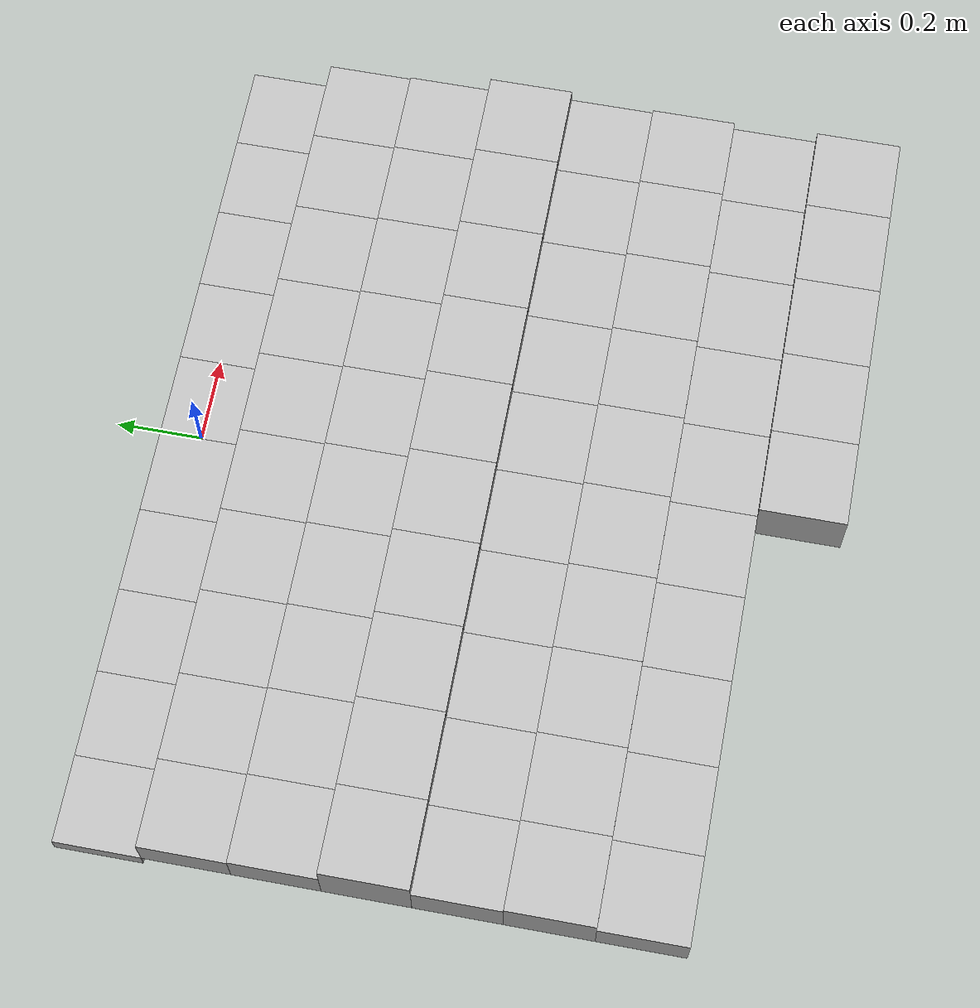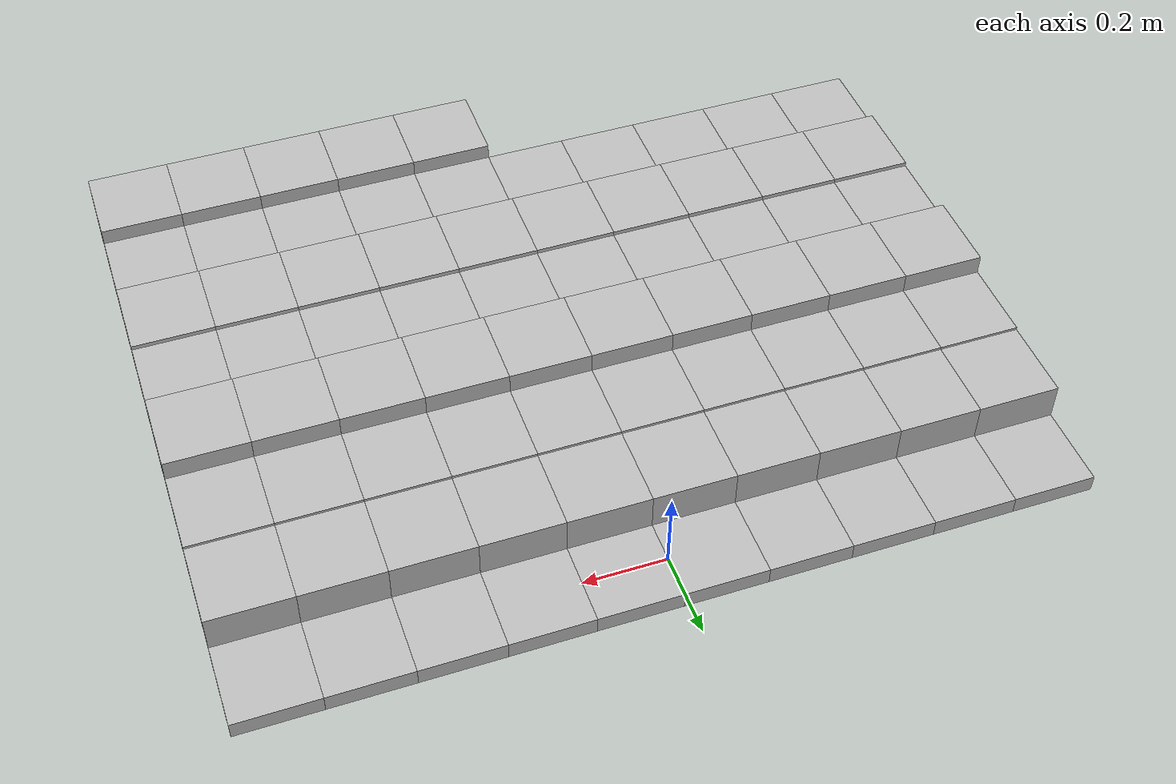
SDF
<sdf version="1.6">
 <model name="Terrain">
  <static>true</static>
  <link name="box_0_0">
   <pose>-0.9 0.0 -0.0213112615711 0 0 0</pose>
   <inertial>
    <mass>1.0</mass>
    <inertia><ixx>0.0</ixx><ixy>0.0</ixy><ixz>0.0</ixz><iyy>0.0</iyy><iyz>0.0</iyz><izz>0.0</izz></inertia>
   </inertial>
   <collision name="collision"><geometry><box><size>0.2 0.2 -0.0426225231422</size></box></geometry></collision>
   <visual name="visual"><geometry><box><size>0.2 0.2 -0.0426225231422</size></box></geometry></visual>
  </link>
  <link name="box_0_1">
   <pose>-0.7 0.0 -0.0213112615711 0 0 0</pose>
   <inertial>
    <mass>1.0</mass>
    <inertia><ixx>0.0</ixx><ixy>0.0</ixy><ixz>0.0</ixz><iyy>0.0</iyy><iyz>0.0</iyz><izz>0.0</izz></inertia>
   </inertial>
   <collision name="collision"><geometry><box><size>0.2 0.2 -0.0426225231422</size></box></geometry></collision>
   <visual name="visual"><geometry><box><size>0.2 0.2 -0.0426225231422</size></box></geometry></visual>
  </link>
  <link name="box_0_2">
   <pose>-0.5 0.0 -0.0213112615711 0 0 0</pose>
   <inertial>
    <mass>1.0</mass>
    <inertia><ixx>0.0</ixx><ixy>0.0</ixy><ixz>0.0</ixz><iyy>0.0</iyy><iyz>0.0</iyz><izz>0.0</izz></inertia>
   </inertial>
   <collision name="collision"><geometry><box><size>0.2 0.2 -0.0426225231422</size></box></geometry></collision>
   <visual name="visual"><geometry><box><size>0.2 0.2 -0.0426225231422</size></box></geometry></visual>
  </link>
  <link name="box_0_3">
   <pose>-0.3 0.0 -0.0213112615711 0 0 0</pose>
   <inertial>
    <mass>1.0</mass>
    <inertia><ixx>0.0</ixx><ixy>0.0</ixy><ixz>0.0</ixz><iyy>0.0</iyy><iyz>0.0</iyz><izz>0.0</izz></inertia>
   </inertial>
   <collision name="collision"><geometry><box><size>0.2 0.2 -0.0426225231422</size></box></geometry></collision>
   <visual name="visual"><geometry><box><size>0.2 0.2 -0.0426225231422</size></box></geometry></visual>
  </link>
  <link name="box_0_4">
   <pose>-0.1 0.0 -0.0213112615711 0 0 0</pose>
   <inertial>
    <mass>1.0</mass>
    <inertia><ixx>0.0</ixx><ixy>0.0</ixy><ixz>0.0</ixz><iyy>0.0</iyy><iyz>0.0</iyz><izz>0.0</izz></inertia>
   </inertial>
   <collision name="collision"><geometry><box><size>0.2 0.2 -0.0426225231422</size></box></geometry></collision>
   <visual name="visual"><geometry><box><size>0.2 0.2 -0.0426225231422</size></box></geometry></visual>
  </link>
  <link name="box_0_5">
   <pose>0.1 0.0 -0.0213112615711 0 0 0</pose>
   <inertial>
    <mass>1.0</mass>
    <inertia><ixx>0.0</ixx><ixy>0.0</ixy><ixz>0.0</ixz><iyy>0.0</iyy><iyz>0.0</iyz><izz>0.0</izz></inertia>
   </inertial>
   <collision name="collision"><geometry><box><size>0.2 0.2 -0.0426225231422</size></box></geometry></collision>
   <visual name="visual"><geometry><box><size>0.2 0.2 -0.0426225231422</size></box></geometry></visual>
  </link>
  <link name="box_0_6">
   <pose>0.3 0.0 -0.0213112615711 0 0 0</pose>
   <inertial>
    <mass>1.0</mass>
    <inertia><ixx>0.0</ixx><ixy>0.0</ixy><ixz>0.0</ixz><iyy>0.0</iyy><iyz>0.0</iyz><izz>0.0</izz></inertia>
   </inertial>
   <collision name="collision"><geometry><box><size>0.2 0.2 -0.0426225231422</size></box></geometry></collision>
   <visual name="visual"><geometry><box><size>0.2 0.2 -0.0426225231422</size></box></geometry></visual>
  </link>
  <link name="box_0_7">
   <pose>0.5 0.0 -0.0213112615711 0 0 0</pose>
   <inertial>
    <mass>1.0</mass>
    <inertia><ixx>0.0</ixx><ixy>0.0</ixy><ixz>0.0</ixz><iyy>0.0</iyy><iyz>0.0</iyz><izz>0.0</izz></inertia>
   </inertial>
   <collision name="collision"><geometry><box><size>0.2 0.2 -0.0426225231422</size></box></geometry></collision>
   <visual name="visual"><geometry><box><size>0.2 0.2 -0.0426225231422</size></box></geometry></visual>
  </link>
  <link name="box_0_8">
   <pose>0.7 0.0 -0.0213112615711 0 0 0</pose>
   <inertial>
    <mass>1.0</mass>
    <inertia><ixx>0.0</ixx><ixy>0.0</ixy><ixz>0.0</ixz><iyy>0.0</iyy><iyz>0.0</iyz><izz>0.0</izz></inertia>
   </inertial>
   <collision name="collision"><geometry><box><size>0.2 0.2 -0.0426225231422</size></box></geometry></collision>
   <visual name="visual"><geometry><box><size>0.2 0.2 -0.0426225231422</size></box></geometry></visual>
  </link>
  <link name="box_0_9">
   <pose>0.9 0.0 -0.0213112615711 0 0 0</pose>
   <inertial>
    <mass>1.0</mass>
    <inertia><ixx>0.0</ixx><ixy>0.0</ixy><ixz>0.0</ixz><iyy>0.0</iyy><iyz>0.0</iyz><izz>0.0</izz></inertia>
   </inertial>
   <collision name="collision"><geometry><box><size>0.2 0.2 -0.0426225231422</size></box></geometry></collision>
   <visual name="visual"><geometry><box><size>0.2 0.2 -0.0426225231422</size></box></geometry></visual>
  </link>
  <link name="box_1_0">
   <pose>-0.9 -0.2 0.0461906929567 0 0 0</pose>
   <inertial>
    <mass>1.0</mass>
    <inertia><ixx>0.0</ixx><ixy>0.0</ixy><ixz>0.0</ixz><iyy>0.0</iyy><iyz>0.0</iyz><izz>0.0</izz></inertia>
   </inertial>
   <collision name="collision"><geometry><box><size>0.2 0.2 0.0923813859134</size></box></geometry></collision>
   <visual name="visual"><geometry><box><size>0.2 0.2 0.0923813859134</size></box></geometry></visual>
  </link>
  <link name="box_1_1">
   <pose>-0.7 -0.2 0.0461906929567 0 0 0</pose>
   <inertial>
    <mass>1.0</mass>
    <inertia><ixx>0.0</ixx><ixy>0.0</ixy><ixz>0.0</ixz><iyy>0.0</iyy><iyz>0.0</iyz><izz>0.0</izz></inertia>
   </inertial>
   <collision name="collision"><geometry><box><size>0.2 0.2 0.0923813859134</size></box></geometry></collision>
   <visual name="visual"><geometry><box><size>0.2 0.2 0.0923813859134</size></box></geometry></visual>
  </link>
  <link name="box_1_2">
   <pose>-0.5 -0.2 0.0461906929567 0 0 0</pose>
   <inertial>
    <mass>1.0</mass>
    <inertia><ixx>0.0</ixx><ixy>0.0</ixy><ixz>0.0</ixz><iyy>0.0</iyy><iyz>0.0</iyz><izz>0.0</izz></inertia>
   </inertial>
   <collision name="collision"><geometry><box><size>0.2 0.2 0.0923813859134</size></box></geometry></collision>
   <visual name="visual"><geometry><box><size>0.2 0.2 0.0923813859134</size></box></geometry></visual>
  </link>
  <link name="box_1_3">
   <pose>-0.3 -0.2 0.0461906929567 0 0 0</pose>
   <inertial>
    <mass>1.0</mass>
    <inertia><ixx>0.0</ixx><ixy>0.0</ixy><ixz>0.0</ixz><iyy>0.0</iyy><iyz>0.0</iyz><izz>0.0</izz></inertia>
   </inertial>
   <collision name="collision"><geometry><box><size>0.2 0.2 0.0923813859134</size></box></geometry></collision>
   <visual name="visual"><geometry><box><size>0.2 0.2 0.0923813859134</size></box></geometry></visual>
  </link>
  <link name="box_1_4">
   <pose>-0.1 -0.2 0.0461906929567 0 0 0</pose>
   <inertial>
    <mass>1.0</mass>
    <inertia><ixx>0.0</ixx><ixy>0.0</ixy><ixz>0.0</ixz><iyy>0.0</iyy><iyz>0.0</iyz><izz>0.0</izz></inertia>
   </inertial>
   <collision name="collision"><geometry><box><size>0.2 0.2 0.0923813859134</size></box></geometry></collision>
   <visual name="visual"><geometry><box><size>0.2 0.2 0.0923813859134</size></box></geometry></visual>
  </link>
  <link name="box_1_5">
   <pose>0.1 -0.2 0.0461906929567 0 0 0</pose>
   <inertial>
    <mass>1.0</mass>
    <inertia><ixx>0.0</ixx><ixy>0.0</ixy><ixz>0.0</ixz><iyy>0.0</iyy><iyz>0.0</iyz><izz>0.0</izz></inertia>
   </inertial>
   <collision name="collision"><geometry><box><size>0.2 0.2 0.0923813859134</size></box></geometry></collision>
   <visual name="visual"><geometry><box><size>0.2 0.2 0.0923813859134</size></box></geometry></visual>
  </link>
  <link name="box_1_6">
   <pose>0.3 -0.2 0.0461906929567 0 0 0</pose>
   <inertial>
    <mass>1.0</mass>
    <inertia><ixx>0.0</ixx><ixy>0.0</ixy><ixz>0.0</ixz><iyy>0.0</iyy><iyz>0.0</iyz><izz>0.0</izz></inertia>
   </inertial>
   <collision name="collision"><geometry><box><size>0.2 0.2 0.0923813859134</size></box></geometry></collision>
   <visual name="visual"><geometry><box><size>0.2 0.2 0.0923813859134</size></box></geometry></visual>
  </link>
  <link name="box_1_7">
   <pose>0.5 -0.2 0.0461906929567 0 0 0</pose>
   <inertial>
    <mass>1.0</mass>
    <inertia><ixx>0.0</ixx><ixy>0.0</ixy><ixz>0.0</ixz><iyy>0.0</iyy><iyz>0.0</iyz><izz>0.0</izz></inertia>
   </inertial>
   <collision name="collision"><geometry><box><size>0.2 0.2 0.0923813859134</size></box></geometry></collision>
   <visual name="visual"><geometry><box><size>0.2 0.2 0.0923813859134</size></box></geometry></visual>
  </link>
  <link name="box_1_8">
   <pose>0.7 -0.2 0.0461906929567 0 0 0</pose>
   <inertial>
    <mass>1.0</mass>
    <inertia><ixx>0.0</ixx><ixy>0.0</ixy><ixz>0.0</ixz><iyy>0.0</iyy><iyz>0.0</iyz><izz>0.0</izz></inertia>
   </inertial>
   <collision name="collision"><geometry><box><size>0.2 0.2 0.0923813859134</size></box></geometry></collision>
   <visual name="visual"><geometry><box><size>0.2 0.2 0.0923813859134</size></box></geometry></visual>
  </link>
  <link name="box_1_9">
   <pose>0.9 -0.2 0.0461906929567 0 0 0</pose>
   <inertial>
    <mass>1.0</mass>
    <inertia><ixx>0.0</ixx><ixy>0.0</ixy><ixz>0.0</ixz><iyy>0.0</iyy><iyz>0.0</iyz><izz>0.0</izz></inertia>
   </inertial>
   <collision name="collision"><geometry><box><size>0.2 0.2 0.0923813859134</size></box></geometry></collision>
   <visual name="visual"><geometry><box><size>0.2 0.2 0.0923813859134</size></box></geometry></visual>
  </link>
  <link name="box_2_0">
   <pose>-0.9 -0.4 0.0494073116421 0 0 0</pose>
   <inertial>
    <mass>1.0</mass>
    <inertia><ixx>0.0</ixx><ixy>0.0</ixy><ixz>0.0</ixz><iyy>0.0</iyy><iyz>0.0</iyz><izz>0.0</izz></inertia>
   </inertial>
   <collision name="collision"><geometry><box><size>0.2 0.2 0.0988146232842</size></box></geometry></collision>
   <visual name="visual"><geometry><box><size>0.2 0.2 0.0988146232842</size></box></geometry></visual>
  </link>
  <link name="box_2_1">
   <pose>-0.7 -0.4 0.0494073116421 0 0 0</pose>
   <inertial>
    <mass>1.0</mass>
    <inertia><ixx>0.0</ixx><ixy>0.0</ixy><ixz>0.0</ixz><iyy>0.0</iyy><iyz>0.0</iyz><izz>0.0</izz></inertia>
   </inertial>
   <collision name="collision"><geometry><box><size>0.2 0.2 0.0988146232842</size></box></geometry></collision>
   <visual name="visual"><geometry><box><size>0.2 0.2 0.0988146232842</size></box></geometry></visual>
  </link>
  <link name="box_2_2">
   <pose>-0.5 -0.4 0.0494073116421 0 0 0</pose>
   <inertial>
    <mass>1.0</mass>
    <inertia><ixx>0.0</ixx><ixy>0.0</ixy><ixz>0.0</ixz><iyy>0.0</iyy><iyz>0.0</iyz><izz>0.0</izz></inertia>
   </inertial>
   <collision name="collision"><geometry><box><size>0.2 0.2 0.0988146232842</size></box></geometry></collision>
   <visual name="visual"><geometry><box><size>0.2 0.2 0.0988146232842</size></box></geometry></visual>
  </link>
  <link name="box_2_3">
   <pose>-0.3 -0.4 0.0494073116421 0 0 0</pose>
   <inertial>
    <mass>1.0</mass>
    <inertia><ixx>0.0</ixx><ixy>0.0</ixy><ixz>0.0</ixz><iyy>0.0</iyy><iyz>0.0</iyz><izz>0.0</izz></inertia>
   </inertial>
   <collision name="collision"><geometry><box><size>0.2 0.2 0.0988146232842</size></box></geometry></collision>
   <visual name="visual"><geometry><box><size>0.2 0.2 0.0988146232842</size></box></geometry></visual>
  </link>
  <link name="box_2_4">
   <pose>-0.1 -0.4 0.0494073116421 0 0 0</pose>
   <inertial>
    <mass>1.0</mass>
    <inertia><ixx>0.0</ixx><ixy>0.0</ixy><ixz>0.0</ixz><iyy>0.0</iyy><iyz>0.0</iyz><izz>0.0</izz></inertia>
   </inertial>
   <collision name="collision"><geometry><box><size>0.2 0.2 0.0988146232842</size></box></geometry></collision>
   <visual name="visual"><geometry><box><size>0.2 0.2 0.0988146232842</size></box></geometry></visual>
  </link>
  <link name="box_2_5">
   <pose>0.1 -0.4 0.0494073116421 0 0 0</pose>
   <inertial>
    <mass>1.0</mass>
    <inertia><ixx>0.0</ixx><ixy>0.0</ixy><ixz>0.0</ixz><iyy>0.0</iyy><iyz>0.0</iyz><izz>0.0</izz></inertia>
   </inertial>
   <collision name="collision"><geometry><box><size>0.2 0.2 0.0988146232842</size></box></geometry></collision>
   <visual name="visual"><geometry><box><size>0.2 0.2 0.0988146232842</size></box></geometry></visual>
  </link>
  <link name="box_2_6">
   <pose>0.3 -0.4 0.0494073116421 0 0 0</pose>
   <inertial>
    <mass>1.0</mass>
    <inertia><ixx>0.0</ixx><ixy>0.0</ixy><ixz>0.0</ixz><iyy>0.0</iyy><iyz>0.0</iyz><izz>0.0</izz></inertia>
   </inertial>
   <collision name="collision"><geometry><box><size>0.2 0.2 0.0988146232842</size></box></geometry></collision>
   <visual name="visual"><geometry><box><size>0.2 0.2 0.0988146232842</size></box></geometry></visual>
  </link>
  <link name="box_2_7">
   <pose>0.5 -0.4 0.0494073116421 0 0 0</pose>
   <inertial>
    <mass>1.0</mass>
    <inertia><ixx>0.0</ixx><ixy>0.0</ixy><ixz>0.0</ixz><iyy>0.0</iyy><iyz>0.0</iyz><izz>0.0</izz></inertia>
   </inertial>
   <collision name="collision"><geometry><box><size>0.2 0.2 0.0988146232842</size></box></geometry></collision>
   <visual name="visual"><geometry><box><size>0.2 0.2 0.0988146232842</size></box></geometry></visual>
  </link>
  <link name="box_2_8">
   <pose>0.7 -0.4 0.0494073116421 0 0 0</pose>
   <inertial>
    <mass>1.0</mass>
    <inertia><ixx>0.0</ixx><ixy>0.0</ixy><ixz>0.0</ixz><iyy>0.0</iyy><iyz>0.0</iyz><izz>0.0</izz></inertia>
   </inertial>
   <collision name="collision"><geometry><box><size>0.2 0.2 0.0988146232842</size></box></geometry></collision>
   <visual name="visual"><geometry><box><size>0.2 0.2 0.0988146232842</size></box></geometry></visual>
  </link>
  <link name="box_2_9">
   <pose>0.9 -0.4 0.0494073116421 0 0 0</pose>
   <inertial>
    <mass>1.0</mass>
    <inertia><ixx>0.0</ixx><ixy>0.0</ixy><ixz>0.0</ixz><iyy>0.0</iyy><iyz>0.0</iyz><izz>0.0</izz></inertia>
   </inertial>
   <collision name="collision"><geometry><box><size>0.2 0.2 0.0988146232842</size></box></geometry></collision>
   <visual name="visual"><geometry><box><size>0.2 0.2 0.0988146232842</size></box></geometry></visual>
  </link>
  <link name="box_3_0">
   <pose>-0.9 -0.6 0.0740722850577 0 0 0</pose>
   <inertial>
    <mass>1.0</mass>
    <inertia><ixx>0.0</ixx><ixy>0.0</ixy><ixz>0.0</ixz><iyy>0.0</iyy><iyz>0.0</iyz><izz>0.0</izz></inertia>
   </inertial>
   <collision name="collision"><geometry><box><size>0.2 0.2 0.148144570115</size></box></geometry></collision>
   <visual name="visual"><geometry><box><size>0.2 0.2 0.148144570115</size></box></geometry></visual>
  </link>
  <link name="box_3_1">
   <pose>-0.7 -0.6 0.0740722850577 0 0 0</pose>
   <inertial>
    <mass>1.0</mass>
    <inertia><ixx>0.0</ixx><ixy>0.0</ixy><ixz>0.0</ixz><iyy>0.0</iyy><iyz>0.0</iyz><izz>0.0</izz></inertia>
   </inertial>
   <collision name="collision"><geometry><box><size>0.2 0.2 0.148144570115</size></box></geometry></collision>
   <visual name="visual"><geometry><box><size>0.2 0.2 0.148144570115</size></box></geometry></visual>
  </link>
  <link name="box_3_2">
   <pose>-0.5 -0.6 0.0740722850577 0 0 0</pose>
   <inertial>
    <mass>1.0</mass>
    <inertia><ixx>0.0</ixx><ixy>0.0</ixy><ixz>0.0</ixz><iyy>0.0</iyy><iyz>0.0</iyz><izz>0.0</izz></inertia>
   </inertial>
   <collision name="collision"><geometry><box><size>0.2 0.2 0.148144570115</size></box></geometry></collision>
   <visual name="visual"><geometry><box><size>0.2 0.2 0.148144570115</size></box></geometry></visual>
  </link>
  <link name="box_3_3">
   <pose>-0.3 -0.6 0.0740722850577 0 0 0</pose>
   <inertial>
    <mass>1.0</mass>
    <inertia><ixx>0.0</ixx><ixy>0.0</ixy><ixz>0.0</ixz><iyy>0.0</iyy><iyz>0.0</iyz><izz>0.0</izz></inertia>
   </inertial>
   <collision name="collision"><geometry><box><size>0.2 0.2 0.148144570115</size></box></geometry></collision>
   <visual name="visual"><geometry><box><size>0.2 0.2 0.148144570115</size></box></geometry></visual>
  </link>
  <link name="box_3_4">
   <pose>-0.1 -0.6 0.0740722850577 0 0 0</pose>
   <inertial>
    <mass>1.0</mass>
    <inertia><ixx>0.0</ixx><ixy>0.0</ixy><ixz>0.0</ixz><iyy>0.0</iyy><iyz>0.0</iyz><izz>0.0</izz></inertia>
   </inertial>
   <collision name="collision"><geometry><box><size>0.2 0.2 0.148144570115</size></box></geometry></collision>
   <visual name="visual"><geometry><box><size>0.2 0.2 0.148144570115</size></box></geometry></visual>
  </link>
  <link name="box_3_5">
   <pose>0.1 -0.6 0.0740722850577 0 0 0</pose>
   <inertial>
    <mass>1.0</mass>
    <inertia><ixx>0.0</ixx><ixy>0.0</ixy><ixz>0.0</ixz><iyy>0.0</iyy><iyz>0.0</iyz><izz>0.0</izz></inertia>
   </inertial>
   <collision name="collision"><geometry><box><size>0.2 0.2 0.148144570115</size></box></geometry></collision>
   <visual name="visual"><geometry><box><size>0.2 0.2 0.148144570115</size></box></geometry></visual>
  </link>
  <link name="box_3_6">
   <pose>0.3 -0.6 0.0740722850577 0 0 0</pose>
   <inertial>
    <mass>1.0</mass>
    <inertia><ixx>0.0</ixx><ixy>0.0</ixy><ixz>0.0</ixz><iyy>0.0</iyy><iyz>0.0</iyz><izz>0.0</izz></inertia>
   </inertial>
   <collision name="collision"><geometry><box><size>0.2 0.2 0.148144570115</size></box></geometry></collision>
   <visual name="visual"><geometry><box><size>0.2 0.2 0.148144570115</size></box></geometry></visual>
  </link>
  <link name="box_3_7">
   <pose>0.5 -0.6 0.0740722850577 0 0 0</pose>
   <inertial>
    <mass>1.0</mass>
    <inertia><ixx>0.0</ixx><ixy>0.0</ixy><ixz>0.0</ixz><iyy>0.0</iyy><iyz>0.0</iyz><izz>0.0</izz></inertia>
   </inertial>
   <collision name="collision"><geometry><box><size>0.2 0.2 0.148144570115</size></box></geometry></collision>
   <visual name="visual"><geometry><box><size>0.2 0.2 0.148144570115</size></box></geometry></visual>
  </link>
  <link name="box_3_8">
   <pose>0.7 -0.6 0.0740722850577 0 0 0</pose>
   <inertial>
    <mass>1.0</mass>
    <inertia><ixx>0.0</ixx><ixy>0.0</ixy><ixz>0.0</ixz><iyy>0.0</iyy><iyz>0.0</iyz><izz>0.0</izz></inertia>
   </inertial>
   <collision name="collision"><geometry><box><size>0.2 0.2 0.148144570115</size></box></geometry></collision>
   <visual name="visual"><geometry><box><size>0.2 0.2 0.148144570115</size></box></geometry></visual>
  </link>
  <link name="box_3_9">
   <pose>0.9 -0.6 0.0740722850577 0 0 0</pose>
   <inertial>
    <mass>1.0</mass>
    <inertia><ixx>0.0</ixx><ixy>0.0</ixy><ixz>0.0</ixz><iyy>0.0</iyy><iyz>0.0</iyz><izz>0.0</izz></inertia>
   </inertial>
   <collision name="collision"><geometry><box><size>0.2 0.2 0.148144570115</size></box></geometry></collision>
   <visual name="visual"><geometry><box><size>0.2 0.2 0.148144570115</size></box></geometry></visual>
  </link>
  <link name="box_4_0">
   <pose>-0.9 -0.8 0.056295122872 0 0 0</pose>
   <inertial>
    <mass>1.0</mass>
    <inertia><ixx>0.0</ixx><ixy>0.0</ixy><ixz>0.0</ixz><iyy>0.0</iyy><iyz>0.0</iyz><izz>0.0</izz></inertia>
   </inertial>
   <collision name="collision"><geometry><box><size>0.2 0.2 0.112590245744</size></box></geometry></collision>
   <visual name="visual"><geometry><box><size>0.2 0.2 0.112590245744</size></box></geometry></visual>
  </link>
  <link name="box_4_1">
   <pose>-0.7 -0.8 0.056295122872 0 0 0</pose>
   <inertial>
    <mass>1.0</mass>
    <inertia><ixx>0.0</ixx><ixy>0.0</ixy><ixz>0.0</ixz><iyy>0.0</iyy><iyz>0.0</iyz><izz>0.0</izz></inertia>
   </inertial>
   <collision name="collision"><geometry><box><size>0.2 0.2 0.112590245744</size></box></geometry></collision>
   <visual name="visual"><geometry><box><size>0.2 0.2 0.112590245744</size></box></geometry></visual>
  </link>
  <link name="box_4_2">
   <pose>-0.5 -0.8 0.056295122872 0 0 0</pose>
   <inertial>
    <mass>1.0</mass>
    <inertia><ixx>0.0</ixx><ixy>0.0</ixy><ixz>0.0</ixz><iyy>0.0</iyy><iyz>0.0</iyz><izz>0.0</izz></inertia>
   </inertial>
   <collision name="collision"><geometry><box><size>0.2 0.2 0.112590245744</size></box></geometry></collision>
   <visual name="visual"><geometry><box><size>0.2 0.2 0.112590245744</size></box></geometry></visual>
  </link>
  <link name="box_4_3">
   <pose>-0.3 -0.8 0.056295122872 0 0 0</pose>
   <inertial>
    <mass>1.0</mass>
    <inertia><ixx>0.0</ixx><ixy>0.0</ixy><ixz>0.0</ixz><iyy>0.0</iyy><iyz>0.0</iyz><izz>0.0</izz></inertia>
   </inertial>
   <collision name="collision"><geometry><box><size>0.2 0.2 0.112590245744</size></box></geometry></collision>
   <visual name="visual"><geometry><box><size>0.2 0.2 0.112590245744</size></box></geometry></visual>
  </link>
  <link name="box_4_4">
   <pose>-0.1 -0.8 0.056295122872 0 0 0</pose>
   <inertial>
    <mass>1.0</mass>
    <inertia><ixx>0.0</ixx><ixy>0.0</ixy><ixz>0.0</ixz><iyy>0.0</iyy><iyz>0.0</iyz><izz>0.0</izz></inertia>
   </inertial>
   <collision name="collision"><geometry><box><size>0.2 0.2 0.112590245744</size></box></geometry></collision>
   <visual name="visual"><geometry><box><size>0.2 0.2 0.112590245744</size></box></geometry></visual>
  </link>
  <link name="box_4_5">
   <pose>0.1 -0.8 0.056295122872 0 0 0</pose>
   <inertial>
    <mass>1.0</mass>
    <inertia><ixx>0.0</ixx><ixy>0.0</ixy><ixz>0.0</ixz><iyy>0.0</iyy><iyz>0.0</iyz><izz>0.0</izz></inertia>
   </inertial>
   <collision name="collision"><geometry><box><size>0.2 0.2 0.112590245744</size></box></geometry></collision>
   <visual name="visual"><geometry><box><size>0.2 0.2 0.112590245744</size></box></geometry></visual>
  </link>
  <link name="box_4_6">
   <pose>0.3 -0.8 0.056295122872 0 0 0</pose>
   <inertial>
    <mass>1.0</mass>
    <inertia><ixx>0.0</ixx><ixy>0.0</ixy><ixz>0.0</ixz><iyy>0.0</iyy><iyz>0.0</iyz><izz>0.0</izz></inertia>
   </inertial>
   <collision name="collision"><geometry><box><size>0.2 0.2 0.112590245744</size></box></geometry></collision>
   <visual name="visual"><geometry><box><size>0.2 0.2 0.112590245744</size></box></geometry></visual>
  </link>
  <link name="box_4_7">
   <pose>0.5 -0.8 0.056295122872 0 0 0</pose>
   <inertial>
    <mass>1.0</mass>
    <inertia><ixx>0.0</ixx><ixy>0.0</ixy><ixz>0.0</ixz><iyy>0.0</iyy><iyz>0.0</iyz><izz>0.0</izz></inertia>
   </inertial>
   <collision name="collision"><geometry><box><size>0.2 0.2 0.112590245744</size></box></geometry></collision>
   <visual name="visual"><geometry><box><size>0.2 0.2 0.112590245744</size></box></geometry></visual>
  </link>
  <link name="box_4_8">
   <pose>0.7 -0.8 0.056295122872 0 0 0</pose>
   <inertial>
    <mass>1.0</mass>
    <inertia><ixx>0.0</ixx><ixy>0.0</ixy><ixz>0.0</ixz><iyy>0.0</iyy><iyz>0.0</iyz><izz>0.0</izz></inertia>
   </inertial>
   <collision name="collision"><geometry><box><size>0.2 0.2 0.112590245744</size></box></geometry></collision>
   <visual name="visual"><geometry><box><size>0.2 0.2 0.112590245744</size></box></geometry></visual>
  </link>
  <link name="box_4_9">
   <pose>0.9 -0.8 0.056295122872 0 0 0</pose>
   <inertial>
    <mass>1.0</mass>
    <inertia><ixx>0.0</ixx><ixy>0.0</ixy><ixz>0.0</ixz><iyy>0.0</iyy><iyz>0.0</iyz><izz>0.0</izz></inertia>
   </inertial>
   <collision name="collision"><geometry><box><size>0.2 0.2 0.112590245744</size></box></geometry></collision>
   <visual name="visual"><geometry><box><size>0.2 0.2 0.112590245744</size></box></geometry></visual>
  </link>
  <link name="box_5_0">
   <pose>-0.9 -1.0 0.0615639079744 0 0 0</pose>
   <inertial>
    <mass>1.0</mass>
    <inertia><ixx>0.0</ixx><ixy>0.0</ixy><ixz>0.0</ixz><iyy>0.0</iyy><iyz>0.0</iyz><izz>0.0</izz></inertia>
   </inertial>
   <collision name="collision"><geometry><box><size>0.2 0.2 0.123127815949</size></box></geometry></collision>
   <visual name="visual"><geometry><box><size>0.2 0.2 0.123127815949</size></box></geometry></visual>
  </link>
  <link name="box_5_1">
   <pose>-0.7 -1.0 0.0615639079744 0 0 0</pose>
   <inertial>
    <mass>1.0</mass>
    <inertia><ixx>0.0</ixx><ixy>0.0</ixy><ixz>0.0</ixz><iyy>0.0</iyy><iyz>0.0</iyz><izz>0.0</izz></inertia>
   </inertial>
   <collision name="collision"><geometry><box><size>0.2 0.2 0.123127815949</size></box></geometry></collision>
   <visual name="visual"><geometry><box><size>0.2 0.2 0.123127815949</size></box></geometry></visual>
  </link>
  <link name="box_5_2">
   <pose>-0.5 -1.0 0.0615639079744 0 0 0</pose>
   <inertial>
    <mass>1.0</mass>
    <inertia><ixx>0.0</ixx><ixy>0.0</ixy><ixz>0.0</ixz><iyy>0.0</iyy><iyz>0.0</iyz><izz>0.0</izz></inertia>
   </inertial>
   <collision name="collision"><geometry><box><size>0.2 0.2 0.123127815949</size></box></geometry></collision>
   <visual name="visual"><geometry><box><size>0.2 0.2 0.123127815949</size></box></geometry></visual>
  </link>
  <link name="box_5_3">
   <pose>-0.3 -1.0 0.0615639079744 0 0 0</pose>
   <inertial>
    <mass>1.0</mass>
    <inertia><ixx>0.0</ixx><ixy>0.0</ixy><ixz>0.0</ixz><iyy>0.0</iyy><iyz>0.0</iyz><izz>0.0</izz></inertia>
   </inertial>
   <collision name="collision"><geometry><box><size>0.2 0.2 0.123127815949</size></box></geometry></collision>
   <visual name="visual"><geometry><box><size>0.2 0.2 0.123127815949</size></box></geometry></visual>
  </link>
  <link name="box_5_4">
   <pose>-0.1 -1.0 0.0615639079744 0 0 0</pose>
   <inertial>
    <mass>1.0</mass>
    <inertia><ixx>0.0</ixx><ixy>0.0</ixy><ixz>0.0</ixz><iyy>0.0</iyy><iyz>0.0</iyz><izz>0.0</izz></inertia>
   </inertial>
   <collision name="collision"><geometry><box><size>0.2 0.2 0.123127815949</size></box></geometry></collision>
   <visual name="visual"><geometry><box><size>0.2 0.2 0.123127815949</size></box></geometry></visual>
  </link>
  <link name="box_5_5">
   <pose>0.1 -1.0 0.0615639079744 0 0 0</pose>
   <inertial>
    <mass>1.0</mass>
    <inertia><ixx>0.0</ixx><ixy>0.0</ixy><ixz>0.0</ixz><iyy>0.0</iyy><iyz>0.0</iyz><izz>0.0</izz></inertia>
   </inertial>
   <collision name="collision"><geometry><box><size>0.2 0.2 0.123127815949</size></box></geometry></collision>
   <visual name="visual"><geometry><box><size>0.2 0.2 0.123127815949</size></box></geometry></visual>
  </link>
  <link name="box_5_6">
   <pose>0.3 -1.0 0.0615639079744 0 0 0</pose>
   <inertial>
    <mass>1.0</mass>
    <inertia><ixx>0.0</ixx><ixy>0.0</ixy><ixz>0.0</ixz><iyy>0.0</iyy><iyz>0.0</iyz><izz>0.0</izz></inertia>
   </inertial>
   <collision name="collision"><geometry><box><size>0.2 0.2 0.123127815949</size></box></geometry></collision>
   <visual name="visual"><geometry><box><size>0.2 0.2 0.123127815949</size></box></geometry></visual>
  </link>
  <link name="box_5_7">
   <pose>0.5 -1.0 0.0615639079744 0 0 0</pose>
   <inertial>
    <mass>1.0</mass>
    <inertia><ixx>0.0</ixx><ixy>0.0</ixy><ixz>0.0</ixz><iyy>0.0</iyy><iyz>0.0</iyz><izz>0.0</izz></inertia>
   </inertial>
   <collision name="collision"><geometry><box><size>0.2 0.2 0.123127815949</size></box></geometry></collision>
   <visual name="visual"><geometry><box><size>0.2 0.2 0.123127815949</size></box></geometry></visual>
  </link>
  <link name="box_5_8">
   <pose>0.7 -1.0 0.0615639079744 0 0 0</pose>
   <inertial>
    <mass>1.0</mass>
    <inertia><ixx>0.0</ixx><ixy>0.0</ixy><ixz>0.0</ixz><iyy>0.0</iyy><iyz>0.0</iyz><izz>0.0</izz></inertia>
   </inertial>
   <collision name="collision"><geometry><box><size>0.2 0.2 0.123127815949</size></box></geometry></collision>
   <visual name="visual"><geometry><box><size>0.2 0.2 0.123127815949</size></box></geometry></visual>
  </link>
  <link name="box_5_9">
   <pose>0.9 -1.0 0.0615639079744 0 0 0</pose>
   <inertial>
    <mass>1.0</mass>
    <inertia><ixx>0.0</ixx><ixy>0.0</ixy><ixz>0.0</ixz><iyy>0.0</iyy><iyz>0.0</iyz><izz>0.0</izz></inertia>
   </inertial>
   <collision name="collision"><geometry><box><size>0.2 0.2 0.123127815949</size></box></geometry></collision>
   <visual name="visual"><geometry><box><size>0.2 0.2 0.123127815949</size></box></geometry></visual>
  </link>
  <link name="box_6_0">
   <pose>-0.9 -1.2 0.0486347352319 0 0 0</pose>
   <inertial>
    <mass>1.0</mass>
    <inertia><ixx>0.0</ixx><ixy>0.0</ixy><ixz>0.0</ixz><iyy>0.0</iyy><iyz>0.0</iyz><izz>0.0</izz></inertia>
   </inertial>
   <collision name="collision"><geometry><box><size>0.2 0.2 0.0972694704639</size></box></geometry></collision>
   <visual name="visual"><geometry><box><size>0.2 0.2 0.0972694704639</size></box></geometry></visual>
  </link>
  <link name="box_6_1">
   <pose>-0.7 -1.2 0.0486347352319 0 0 0</pose>
   <inertial>
    <mass>1.0</mass>
    <inertia><ixx>0.0</ixx><ixy>0.0</ixy><ixz>0.0</ixz><iyy>0.0</iyy><iyz>0.0</iyz><izz>0.0</izz></inertia>
   </inertial>
   <collision name="collision"><geometry><box><size>0.2 0.2 0.0972694704639</size></box></geometry></collision>
   <visual name="visual"><geometry><box><size>0.2 0.2 0.0972694704639</size></box></geometry></visual>
  </link>
  <link name="box_6_2">
   <pose>-0.5 -1.2 0.0486347352319 0 0 0</pose>
   <inertial>
    <mass>1.0</mass>
    <inertia><ixx>0.0</ixx><ixy>0.0</ixy><ixz>0.0</ixz><iyy>0.0</iyy><iyz>0.0</iyz><izz>0.0</izz></inertia>
   </inertial>
   <collision name="collision"><geometry><box><size>0.2 0.2 0.0972694704639</size></box></geometry></collision>
   <visual name="visual"><geometry><box><size>0.2 0.2 0.0972694704639</size></box></geometry></visual>
  </link>
  <link name="box_6_3">
   <pose>-0.3 -1.2 0.0486347352319 0 0 0</pose>
   <inertial>
    <mass>1.0</mass>
    <inertia><ixx>0.0</ixx><ixy>0.0</ixy><ixz>0.0</ixz><iyy>0.0</iyy><iyz>0.0</iyz><izz>0.0</izz></inertia>
   </inertial>
   <collision name="collision"><geometry><box><size>0.2 0.2 0.0972694704639</size></box></geometry></collision>
   <visual name="visual"><geometry><box><size>0.2 0.2 0.0972694704639</size></box></geometry></visual>
  </link>
  <link name="box_6_4">
   <pose>-0.1 -1.2 0.0486347352319 0 0 0</pose>
   <inertial>
    <mass>1.0</mass>
    <inertia><ixx>0.0</ixx><ixy>0.0</ixy><ixz>0.0</ixz><iyy>0.0</iyy><iyz>0.0</iyz><izz>0.0</izz></inertia>
   </inertial>
   <collision name="collision"><geometry><box><size>0.2 0.2 0.0972694704639</size></box></geometry></collision>
   <visual name="visual"><geometry><box><size>0.2 0.2 0.0972694704639</size></box></geometry></visual>
  </link>
  <link name="box_6_5">
   <pose>0.1 -1.2 0.0486347352319 0 0 0</pose>
   <inertial>
    <mass>1.0</mass>
    <inertia><ixx>0.0</ixx><ixy>0.0</ixy><ixz>0.0</ixz><iyy>0.0</iyy><iyz>0.0</iyz><izz>0.0</izz></inertia>
   </inertial>
   <collision name="collision"><geometry><box><size>0.2 0.2 0.0972694704639</size></box></geometry></collision>
   <visual name="visual"><geometry><box><size>0.2 0.2 0.0972694704639</size></box></geometry></visual>
  </link>
  <link name="box_6_6">
   <pose>0.3 -1.2 0.0486347352319 0 0 0</pose>
   <inertial>
    <mass>1.0</mass>
    <inertia><ixx>0.0</ixx><ixy>0.0</ixy><ixz>0.0</ixz><iyy>0.0</iyy><iyz>0.0</iyz><izz>0.0</izz></inertia>
   </inertial>
   <collision name="collision"><geometry><box><size>0.2 0.2 0.0972694704639</size></box></geometry></collision>
   <visual name="visual"><geometry><box><size>0.2 0.2 0.0972694704639</size></box></geometry></visual>
  </link>
  <link name="box_6_7">
   <pose>0.5 -1.2 0.0486347352319 0 0 0</pose>
   <inertial>
    <mass>1.0</mass>
    <inertia><ixx>0.0</ixx><ixy>0.0</ixy><ixz>0.0</ixz><iyy>0.0</iyy><iyz>0.0</iyz><izz>0.0</izz></inertia>
   </inertial>
   <collision name="collision"><geometry><box><size>0.2 0.2 0.0972694704639</size></box></geometry></collision>
   <visual name="visual"><geometry><box><size>0.2 0.2 0.0972694704639</size></box></geometry></visual>
  </link>
  <link name="box_6_8">
   <pose>0.7 -1.2 0.0486347352319 0 0 0</pose>
   <inertial>
    <mass>1.0</mass>
    <inertia><ixx>0.0</ixx><ixy>0.0</ixy><ixz>0.0</ixz><iyy>0.0</iyy><iyz>0.0</iyz><izz>0.0</izz></inertia>
   </inertial>
   <collision name="collision"><geometry><box><size>0.2 0.2 0.0972694704639</size></box></geometry></collision>
   <visual name="visual"><geometry><box><size>0.2 0.2 0.0972694704639</size></box></geometry></visual>
  </link>
  <link name="box_6_9">
   <pose>0.9 -1.2 0.0486347352319 0 0 0</pose>
   <inertial>
    <mass>1.0</mass>
    <inertia><ixx>0.0</ixx><ixy>0.0</ixy><ixz>0.0</ixz><iyy>0.0</iyy><iyz>0.0</iyz><izz>0.0</izz></inertia>
   </inertial>
   <collision name="collision"><geometry><box><size>0.2 0.2 0.0972694704639</size></box></geometry></collision>
   <visual name="visual"><geometry><box><size>0.2 0.2 0.0972694704639</size></box></geometry></visual>
  </link>
  <link name="box_7_5">
   <pose>0.1 -1.4 0.067952245221 0 0 0</pose>
   <inertial>
    <mass>1.0</mass>
    <inertia><ixx>0.0</ixx><ixy>0.0</ixy><ixz>0.0</ixz><iyy>0.0</iyy><iyz>0.0</iyz><izz>0.0</izz></inertia>
   </inertial>
   <collision name="collision"><geometry><box><size>0.2 0.2 0.135904490442</size></box></geometry></collision>
   <visual name="visual"><geometry><box><size>0.2 0.2 0.135904490442</size></box></geometry></visual>
  </link>
  <link name="box_7_6">
   <pose>0.3 -1.4 0.067952245221 0 0 0</pose>
   <inertial>
    <mass>1.0</mass>
    <inertia><ixx>0.0</ixx><ixy>0.0</ixy><ixz>0.0</ixz><iyy>0.0</iyy><iyz>0.0</iyz><izz>0.0</izz></inertia>
   </inertial>
   <collision name="collision"><geometry><box><size>0.2 0.2 0.135904490442</size></box></geometry></collision>
   <visual name="visual"><geometry><box><size>0.2 0.2 0.135904490442</size></box></geometry></visual>
  </link>
  <link name="box_7_7">
   <pose>0.5 -1.4 0.067952245221 0 0 0</pose>
   <inertial>
    <mass>1.0</mass>
    <inertia><ixx>0.0</ixx><ixy>0.0</ixy><ixz>0.0</ixz><iyy>0.0</iyy><iyz>0.0</iyz><izz>0.0</izz></inertia>
   </inertial>
   <collision name="collision"><geometry><box><size>0.2 0.2 0.135904490442</size></box></geometry></collision>
   <visual name="visual"><geometry><box><size>0.2 0.2 0.135904490442</size></box></geometry></visual>
  </link>
  <link name="box_7_8">
   <pose>0.7 -1.4 0.067952245221 0 0 0</pose>
   <inertial>
    <mass>1.0</mass>
    <inertia><ixx>0.0</ixx><ixy>0.0</ixy><ixz>0.0</ixz><iyy>0.0</iyy><iyz>0.0</iyz><izz>0.0</izz></inertia>
   </inertial>
   <collision name="collision"><geometry><box><size>0.2 0.2 0.135904490442</size></box></geometry></collision>
   <visual name="visual"><geometry><box><size>0.2 0.2 0.135904490442</size></box></geometry></visual>
  </link>
  <link name="box_7_9">
   <pose>0.9 -1.4 0.067952245221 0 0 0</pose>
   <inertial>
    <mass>1.0</mass>
    <inertia><ixx>0.0</ixx><ixy>0.0</ixy><ixz>0.0</ixz><iyy>0.0</iyy><iyz>0.0</iyz><izz>0.0</izz></inertia>
   </inertial>
   <collision name="collision"><geometry><box><size>0.2 0.2 0.135904490442</size></box></geometry></collision>
   <visual name="visual"><geometry><box><size>0.2 0.2 0.135904490442</size></box></geometry></visual>
  </link>
 </model>
</sdf>
